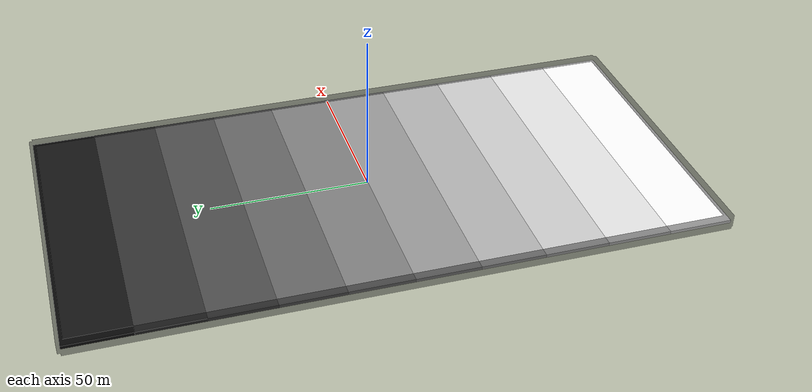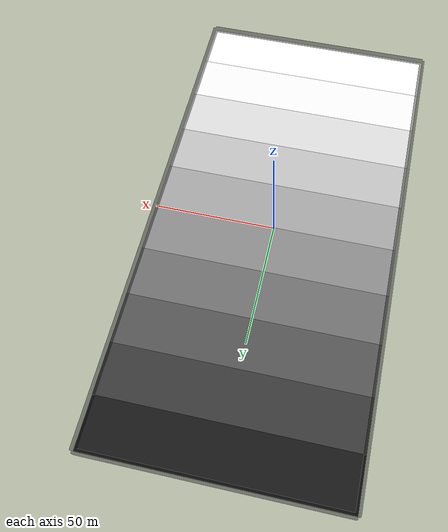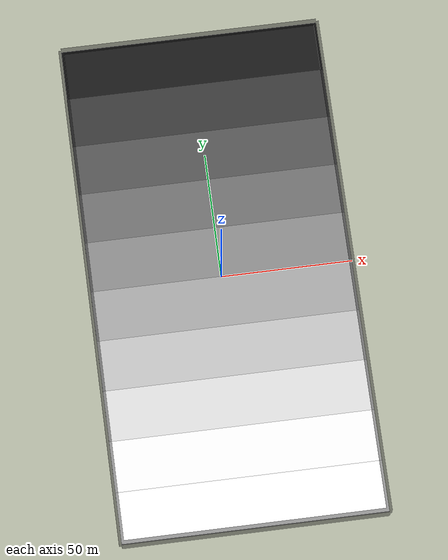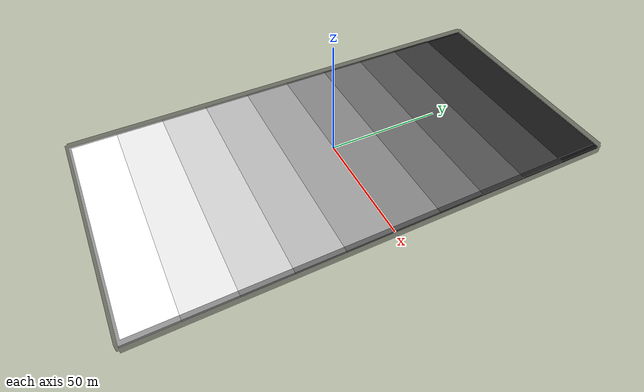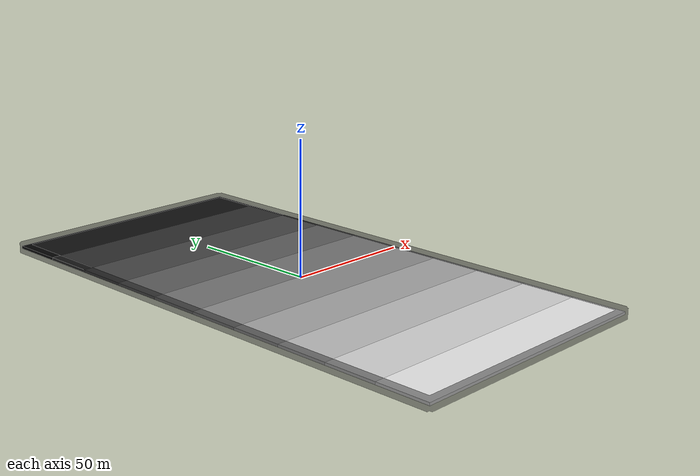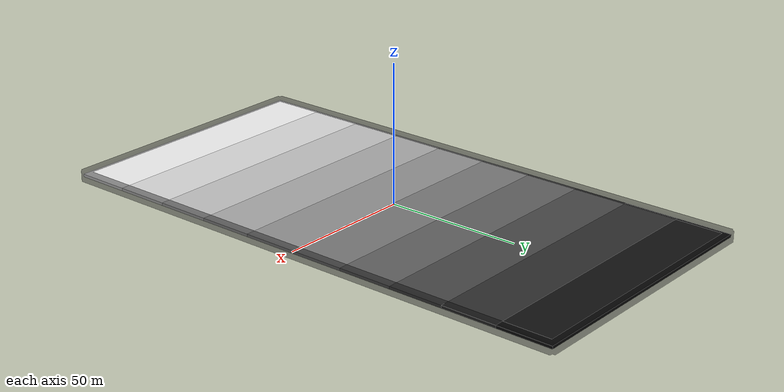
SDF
<sdf version='1.6'>
  <world name='roboskel_frictionground'>
    <light name='sun' type='directional'>
      <cast_shadows>1</cast_shadows>
      <pose frame=''>0 0 10 0 0 0</pose>
      <diffuse>0.8 0.8 0.8 1</diffuse>
      <specular>0.1 0.1 0.1 1</specular>
      <attenuation>
        <range>1000</range>
        <constant>0.9</constant>
        <linear>0.01</linear>
        <quadratic>0.001</quadratic>
      </attenuation>
      <direction>-0.5 0.5 -1</direction>
    </light>
    <gravity>0 0 -9.8</gravity>
    <magnetic_field>6e-06 2.3e-05 -4.2e-05</magnetic_field>
    <atmosphere type='adiabatic'/>
    <physics name='default_physics' default='0' type='ode'>
      <max_step_size>0.001</max_step_size>
      <real_time_factor>1</real_time_factor>
      <real_time_update_rate>1000</real_time_update_rate>
    </physics>
    <scene>
      <ambient>0.4 0.4 0.4 1</ambient>
      <background>0.7 0.7 0.7 1</background>
      <shadows>1</shadows>
    </scene>
    <spherical_coordinates>
      <surface_model>EARTH_WGS84</surface_model>
      <latitude_deg>0</latitude_deg>
      <longitude_deg>0</longitude_deg>
      <elevation>0</elevation>
      <heading_deg>0</heading_deg>
    </spherical_coordinates>

    <model name='roboskel_frictionground'>
      <static>1</static>

      <link name='fence'>
        <collision name='collision'>
          <pose frame=''>0 0 0 0 0 0</pose>
          <geometry>
            <mesh>
              <uri>model://fence200x100/meshes/fence200x100.stl</uri>
              <scale>1 1 1</scale>
            </mesh>
          </geometry>
          <surface>
            <friction>
              <ode>
                <mu>1</mu>
                <mu2>1</mu2>
              </ode>
              <torsional>
                <ode/>
              </torsional>
            </friction>
            <contact>
              <ode>
                <kp>1e+07</kp>
                <kd>1</kd>
                <min_depth>0.001</min_depth>
                <max_vel>0.1</max_vel>
              </ode>
            </contact>
            <bounce/>
          </surface>
          <max_contacts>10</max_contacts>
        </collision>
        <visual name='visual'>
          <cast_shadows>0</cast_shadows>
          <pose frame=''>0 0 0 0 0 0</pose>
          <geometry>
            <mesh>
              <uri>model://fence200x100/meshes/fence200x100.stl</uri>
              <scale>1 1 1</scale>
            </mesh>
          </geometry>
          <material>
            <ambient>0 0 0 0.4</ambient>
            <diffuse>0 0 0 0.4</diffuse>
            <specular>0.1 0.1 0.1 1</specular>
            <emissive>0 0 0 0</emissive>
          </material>
        </visual>
        <self_collide>0</self_collide>
        <kinematic>0</kinematic>
        <gravity>1</gravity>
      </link>

      <link name='perfect,mu=1.0'>
        <collision name='collision'>
          <pose frame=''>0 -90 0 0 0 0</pose>
          <geometry>
            <mesh>
              <uri>model://plane20x100/meshes/plane20x100.stl</uri>
              <scale>1 1 1</scale>
            </mesh>
          </geometry>
          <surface>
            <friction>
              <ode>
                <mu>1</mu>
                <mu2>1</mu2>
              </ode>
              <torsional>
                <ode/>
              </torsional>
            </friction>
            <contact>
              <ode>
                <kp>1e+07</kp>
                <kd>1</kd>
                <min_depth>0.001</min_depth>
                <max_vel>0.1</max_vel>
              </ode>
            </contact>
            <bounce/>
          </surface>
          <max_contacts>10</max_contacts>
        </collision>
        <visual name='visual'>
          <cast_shadows>0</cast_shadows>
          <pose frame=''>0 -90 0 0 0 0</pose>
          <geometry>
            <mesh>
              <uri>model://plane20x100/meshes/plane20x100.stl</uri>
              <scale>1 1 1</scale>
            </mesh>
          </geometry>
          <material>
            <ambient>1 1 1 1</ambient>
            <diffuse>1 1 1 1</diffuse>
            <specular>0.1 0.1 0.1 1</specular>
            <emissive>0 0 0 0</emissive>
          </material>
        </visual>
        <self_collide>0</self_collide>
        <kinematic>0</kinematic>
        <gravity>1</gravity>
      </link>

      <link name='dry_asphalt,mu=0.9'>
        <collision name='collision'>
          <pose frame=''>0 -70 0 0 0 0</pose>
          <geometry>
            <mesh>
              <uri>model://plane20x100/meshes/plane20x100.stl</uri>
              <scale>1 1 1</scale>
            </mesh>
          </geometry>
          <surface>
            <friction>
              <ode>
                <mu>0.9</mu>
                <mu2>0.9</mu2>
              </ode>
              <torsional>
                <ode/>
              </torsional>
            </friction>
            <contact>
              <ode>
                <kp>1e+07</kp>
                <kd>1</kd>
                <min_depth>0.001</min_depth>
                <max_vel>0.1</max_vel>
              </ode>
            </contact>
            <bounce/>
          </surface>
          <max_contacts>10</max_contacts>
        </collision>
        <visual name='visual'>
          <cast_shadows>0</cast_shadows>
          <pose frame=''>0 -70 0 0 0 0</pose>
          <geometry>
            <mesh>
              <uri>model://plane20x100/meshes/plane20x100.stl</uri>
              <scale>1 1 1</scale>
            </mesh>
          </geometry>
          <material>
            <ambient>0.9 0.9 0.9 1</ambient>
            <diffuse>0.9 0.9 0.9 1</diffuse>
            <specular>0.1 0.1 0.1 1</specular>
            <emissive>0 0 0 0</emissive>
          </material>
        </visual>
        <self_collide>0</self_collide>
        <kinematic>0</kinematic>
        <gravity>1</gravity>
      </link>

      <link name='wet_asphalt,mu=0.8'>
        <collision name='collision'>
          <pose frame=''>0 -50 0 0 0 0</pose>
          <geometry>
            <mesh>
              <uri>model://plane20x100/meshes/plane20x100.stl</uri>
              <scale>1 1 1</scale>
            </mesh>
          </geometry>
          <surface>
            <friction>
              <ode>
                <mu>0.8</mu>
                <mu2>0.8</mu2>
              </ode>
              <torsional>
                <ode/>
              </torsional>
            </friction>
            <contact>
              <ode>
                <kp>1e+07</kp>
                <kd>1</kd>
                <min_depth>0.001</min_depth>
                <max_vel>0.1</max_vel>
              </ode>
            </contact>
            <bounce/>
          </surface>
          <max_contacts>10</max_contacts>
        </collision>
        <visual name='visual'>
          <cast_shadows>0</cast_shadows>
          <pose frame=''>0 -50 0 0 0 0</pose>
          <geometry>
            <mesh>
              <uri>model://plane20x100/meshes/plane20x100.stl</uri>
              <scale>1 1 1</scale>
            </mesh>
          </geometry>
          <material>
            <ambient>0.8 0.8 0.8 1</ambient>
            <diffuse>0.8 0.8 0.8 1</diffuse>
            <specular>0.1 0.1 0.1 1</specular>
            <emissive>0 0 0 0</emissive>
          </material>
        </visual>
        <self_collide>0</self_collide>
        <kinematic>0</kinematic>
        <gravity>1</gravity>
      </link>

      <link name='dry_concrete,mu=0.7'>
        <collision name='collision'>
          <pose frame=''>0 -30 0 0 0 0</pose>
          <geometry>
            <mesh>
              <uri>model://plane20x100/meshes/plane20x100.stl</uri>
              <scale>1 1 1</scale>
            </mesh>
          </geometry>
          <surface>
            <friction>
              <ode>
                <mu>0.7</mu>
                <mu2>0.7</mu2>
              </ode>
              <torsional>
                <ode/>
              </torsional>
            </friction>
            <contact>
              <ode>
                <kp>1e+07</kp>
                <kd>1</kd>
                <min_depth>0.001</min_depth>
                <max_vel>0.1</max_vel>
              </ode>
            </contact>
            <bounce/>
          </surface>
          <max_contacts>10</max_contacts>
        </collision>
        <visual name='visual'>
          <cast_shadows>0</cast_shadows>
          <pose frame=''>0 -30 0 0 0 0</pose>
          <geometry>
            <mesh>
              <uri>model://plane20x100/meshes/plane20x100.stl</uri>
              <scale>1 1 1</scale>
            </mesh>
          </geometry>
          <material>
            <ambient>0.7 0.7 0.7 1</ambient>
            <diffuse>0.7 0.7 0.7 1</diffuse>
            <specular>0.1 0.1 0.1 1</specular>
            <emissive>0 0 0 0</emissive>
          </material>
        </visual>
        <self_collide>0</self_collide>
        <kinematic>0</kinematic>
        <gravity>1</gravity>
      </link>

      <link name='wet_concrete,mu=0.6'>
        <collision name='collision'>
          <pose frame=''>0 -10 0 0 0 0</pose>
          <geometry>
            <mesh>
              <uri>model://plane20x100/meshes/plane20x100.stl</uri>
              <scale>1 1 1</scale>
            </mesh>
          </geometry>
          <surface>
            <friction>
              <ode>
                <mu>0.6</mu>
                <mu2>0.6</mu2>
              </ode>
              <torsional>
                <ode/>
              </torsional>
            </friction>
            <contact>
              <ode>
                <kp>1e+07</kp>
                <kd>1</kd>
                <min_depth>0.001</min_depth>
                <max_vel>0.1</max_vel>
              </ode>
            </contact>
            <bounce/>
          </surface>
          <max_contacts>10</max_contacts>
        </collision>
        <visual name='visual'>
          <cast_shadows>0</cast_shadows>
          <pose frame=''>0 -10 0 0 0 0</pose>
          <geometry>
            <mesh>
              <uri>model://plane20x100/meshes/plane20x100.stl</uri>
              <scale>1 1 1</scale>
            </mesh>
          </geometry>
          <material>
            <ambient>0.6 0.6 0.6 1</ambient>
            <diffuse>0.6 0.6 0.6 1</diffuse>
            <specular>0.1 0.1 0.1 1</specular>
            <emissive>0 0 0 0</emissive>
          </material>
        </visual>
        <self_collide>0</self_collide>
        <kinematic>0</kinematic>
        <gravity>1</gravity>
      </link>

      <link name='dry_soil,mu=0.5'>
        <collision name='collision'>
          <pose frame=''>0 10 0 0 0 0</pose>
          <geometry>
            <mesh>
              <uri>model://plane20x100/meshes/plane20x100.stl</uri>
              <scale>1 1 1</scale>
            </mesh>
          </geometry>
          <surface>
            <friction>
              <ode>
                <mu>0.5</mu>
                <mu2>0.5</mu2>
              </ode>
              <torsional>
                <ode/>
              </torsional>
            </friction>
            <contact>
              <ode>
                <kp>1e+07</kp>
                <kd>1</kd>
                <min_depth>0.001</min_depth>
                <max_vel>0.1</max_vel>
              </ode>
            </contact>
            <bounce/>
          </surface>
          <max_contacts>10</max_contacts>
        </collision>
        <visual name='visual'>
          <cast_shadows>0</cast_shadows>
          <pose frame=''>0 10 0 0 0 0</pose>
          <geometry>
            <mesh>
              <uri>model://plane20x100/meshes/plane20x100.stl</uri>
              <scale>1 1 1</scale>
            </mesh>
          </geometry>
          <material>
            <ambient>0.5 0.5 0.5 1</ambient>
            <diffuse>0.5 0.5 0.5 1</diffuse>
            <specular>0.1 0.1 0.1 1</specular>
            <emissive>0 0 0 0</emissive>
          </material>
        </visual>
        <self_collide>0</self_collide>
        <kinematic>0</kinematic>
        <gravity>1</gravity>
      </link>

      <link name='wet_soil,mu=0.4'>
        <collision name='collision'>
          <pose frame=''>0 30 0 0 0 0</pose>
          <geometry>
            <mesh>
              <uri>model://plane20x100/meshes/plane20x100.stl</uri>
              <scale>1 1 1</scale>
            </mesh>
          </geometry>
          <surface>
            <friction>
              <ode>
                <mu>0.4</mu>
                <mu2>0.4</mu2>
              </ode>
              <torsional>
                <ode/>
              </torsional>
            </friction>
            <contact>
              <ode>
                <kp>1e+07</kp>
                <kd>1</kd>
                <min_depth>0.001</min_depth>
                <max_vel>0.1</max_vel>
              </ode>
            </contact>
            <bounce/>
          </surface>
          <max_contacts>10</max_contacts>
        </collision>
        <visual name='visual'>
          <cast_shadows>0</cast_shadows>
          <pose frame=''>0 30 0 0 0 0</pose>
          <geometry>
            <mesh>
              <uri>model://plane20x100/meshes/plane20x100.stl</uri>
              <scale>1 1 1</scale>
            </mesh>
          </geometry>
          <material>
            <ambient>0.4 0.4 0.4 1</ambient>
            <diffuse>0.4 0.4 0.4 1</diffuse>
            <specular>0.1 0.1 0.1 1</specular>
            <emissive>0 0 0 0</emissive>
          </material>
        </visual>
        <self_collide>0</self_collide>
        <kinematic>0</kinematic>
        <gravity>1</gravity>
      </link>

      <link name='dry_grass,mu=0.3'>
        <collision name='collision'>
          <pose frame=''>0 50 0 0 0 0</pose>
          <geometry>
            <mesh>
              <uri>model://plane20x100/meshes/plane20x100.stl</uri>
              <scale>1 1 1</scale>
            </mesh>
          </geometry>
          <surface>
            <friction>
              <ode>
                <mu>0.3</mu>
                <mu2>0.3</mu2>
              </ode>
              <torsional>
                <ode/>
              </torsional>
            </friction>
            <contact>
              <ode>
                <kp>1e+07</kp>
                <kd>1</kd>
                <min_depth>0.001</min_depth>
                <max_vel>0.1</max_vel>
              </ode>
            </contact>
            <bounce/>
          </surface>
          <max_contacts>10</max_contacts>
        </collision>
        <visual name='visual'>
          <cast_shadows>0</cast_shadows>
          <pose frame=''>0 50 0 0 0 0</pose>
          <geometry>
            <mesh>
              <uri>model://plane20x100/meshes/plane20x100.stl</uri>
              <scale>1 1 1</scale>
            </mesh>
          </geometry>
          <material>
            <ambient>0.3 0.3 0.3 1</ambient>
            <diffuse>0.3 0.3 0.3 1</diffuse>
            <specular>0.1 0.1 0.1 1</specular>
            <emissive>0 0 0 0</emissive>
          </material>
        </visual>
        <self_collide>0</self_collide>
        <kinematic>0</kinematic>
        <gravity>1</gravity>
      </link>

      <link name='wet_grass,mu=0.2'>
        <collision name='collision'>
          <pose frame=''>0 70 0 0 0 0</pose>
          <geometry>
            <mesh>
              <uri>model://plane20x100/meshes/plane20x100.stl</uri>
              <scale>1 1 1</scale>
            </mesh>
          </geometry>
          <surface>
            <friction>
              <ode>
                <mu>0.2</mu>
                <mu2>0.2</mu2>
              </ode>
              <torsional>
                <ode/>
              </torsional>
            </friction>
            <contact>
              <ode>
                <kp>1e+07</kp>
                <kd>1</kd>
                <min_depth>0.001</min_depth>
                <max_vel>0.1</max_vel>
              </ode>
            </contact>
            <bounce/>
          </surface>
          <max_contacts>10</max_contacts>
        </collision>
        <visual name='visual'>
          <cast_shadows>0</cast_shadows>
          <pose frame=''>0 70 0 0 0 0</pose>
          <geometry>
            <mesh>
              <uri>model://plane20x100/meshes/plane20x100.stl</uri>
              <scale>1 1 1</scale>
            </mesh>
          </geometry>
          <material>
            <ambient>0.2 0.2 0.2 1</ambient>
            <diffuse>0.2 0.2 0.2 1</diffuse>
            <specular>0.1 0.1 0.1 1</specular>
            <emissive>0 0 0 0</emissive>
          </material>
        </visual>
        <self_collide>0</self_collide>
        <kinematic>0</kinematic>
        <gravity>1</gravity>
      </link>

      <link name='ice,mu=0.08'>
        <collision name='collision'>
          <pose frame=''>0 90 0 0 0 0</pose>
          <geometry>
            <mesh>
              <uri>model://plane20x100/meshes/plane20x100.stl</uri>
              <scale>1 1 1</scale>
            </mesh>
          </geometry>
          <surface>
            <friction>
              <ode>
                <mu>0.08</mu>
                <mu2>0.08</mu2>
              </ode>
              <torsional>
                <ode/>
              </torsional>
            </friction>
            <contact>
              <ode>
                <kp>1e+07</kp>
                <kd>1</kd>
                <min_depth>0.001</min_depth>
                <max_vel>0.1</max_vel>
              </ode>
            </contact>
            <bounce/>
          </surface>
          <max_contacts>10</max_contacts>
        </collision>
        <visual name='visual'>
          <cast_shadows>0</cast_shadows>
          <pose frame=''>0 90 0 0 0 0</pose>
          <geometry>
            <mesh>
              <uri>model://plane20x100/meshes/plane20x100.stl</uri>
              <scale>1 1 1</scale>
            </mesh>
          </geometry>
          <material>
            <ambient>0.08 0.08 0.08 1</ambient>
            <diffuse>0.08 0.08 0.08 1</diffuse>
            <specular>0.1 0.1 0.1 1</specular>
            <emissive>0 0 0 0</emissive>
          </material>
        </visual>
        <self_collide>0</self_collide>
        <kinematic>0</kinematic>
        <gravity>1</gravity>
      </link>

      <pose frame=''>0 0 0 0 0 0</pose>
    </model>
  </world>
</sdf>
